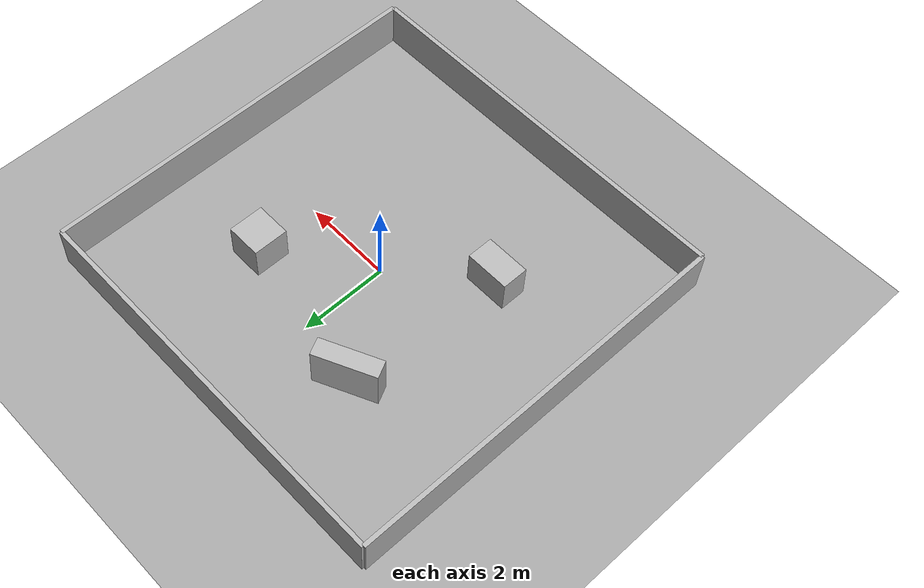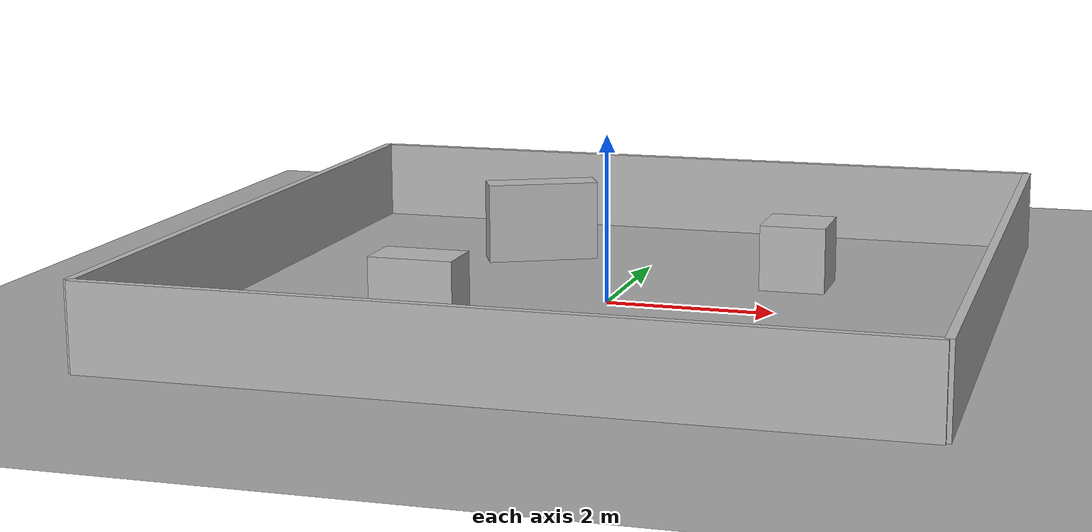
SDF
<?xml version="1.0"?>
<sdf version="1.9">

  <world name="motionlab_world">

    <physics name="physics" type="ignored">
      <max_step_size>0.01</max_step_size>
      <real_time_factor>1.0</real_time_factor>
    </physics>

    <plugin
      filename="gz-sim-physics-system"
      name="gz::sim::systems::Physics"/>

    <plugin
      filename="gz-sim-user-commands-system"
      name="gz::sim::systems::UserCommands"/>

    <plugin
      filename="gz-sim-scene-broadcaster-system"
      name="gz::sim::systems::SceneBroadcaster"/>

    <plugin
      filename="gz-sim-sensors-system"
      name="gz::sim::systems::Sensors">
      <render_engine>ogre2</render_engine>
    </plugin>

    <scene>
      <ambient>0.8 0.8 0.8 1</ambient>
      <background>0.15 0.15 0.18 1</background>
      <shadows>true</shadows>
    </scene>

    <light type="directional" name="sun">
      <cast_shadows>true</cast_shadows>
      <pose>0 0 10 0 0 0</pose>

      <diffuse>0.9 0.9 0.9 1</diffuse>
      <specular>0.2 0.2 0.2 1</specular>

      <attenuation>
        <range>1000</range>
        <constant>0.9</constant>
        <linear>0.01</linear>
        <quadratic>0.001</quadratic>
      </attenuation>

      <direction>-0.5 0.2 -0.9</direction>
    </light>

    <model name="ground_plane">
      <static>true</static>

      <link name="link">
        <collision name="collision">
          <geometry>
            <plane>
              <normal>0 0 1</normal>
              <size>30 30</size>
            </plane>
          </geometry>
        </collision>

        <visual name="visual">
          <geometry>
            <plane>
              <normal>0 0 1</normal>
              <size>30 30</size>
            </plane>
          </geometry>

          <material>
            <ambient>0.65 0.65 0.65 1</ambient>
            <diffuse>0.65 0.65 0.65 1</diffuse>
            <specular>0.05 0.05 0.05 1</specular>
          </material>
        </visual>
      </link>
    </model>

    <!-- MotionLab SLAM test arena     -->

    <!-- Front wall -->
    <model name="wall_front">
      <static>true</static>
      <pose>4.5 0 0.5 0 0 0</pose>
      <link name="link">
        <collision name="collision">
          <geometry>
            <box>
              <size>0.10 9.0 1.0</size>
            </box>
          </geometry>
        </collision>

        <visual name="visual">
          <geometry>
            <box>
              <size>0.10 9.0 1.0</size>
            </box>
          </geometry>
        </visual>
      </link>
    </model>

    <!-- Rear wall -->
    <model name="wall_rear">
      <static>true</static>
      <pose>-4.5 0 0.5 0 0 0</pose>
      <link name="link">
        <collision name="collision">
          <geometry>
            <box>
              <size>0.10 9.0 1.0</size>
            </box>
          </geometry>
        </collision>

        <visual name="visual">
          <geometry>
            <box>
              <size>0.10 9.0 1.0</size>
            </box>
          </geometry>
        </visual>
      </link>
    </model>

    <!-- Left wall -->
    <model name="wall_left">
      <static>true</static>
      <pose>0 4.5 0.5 0 0 0</pose>
      <link name="link">
        <collision name="collision">
          <geometry>
            <box>
              <size>9.0 0.10 1.0</size>
            </box>
          </geometry>
        </collision>

        <visual name="visual">
          <geometry>
            <box>
              <size>9.0 0.10 1.0</size>
            </box>
          </geometry>
        </visual>
      </link>
    </model>

    <!-- Right wall -->
    <model name="wall_right">
      <static>true</static>
      <pose>0 -4.5 0.5 0 0 0</pose>
      <link name="link">
        <collision name="collision">
          <geometry>
            <box>
              <size>9.0 0.10 1.0</size>
            </box>
          </geometry>
        </collision>

        <visual name="visual">
          <geometry>
            <box>
              <size>9.0 0.10 1.0</size>
            </box>
          </geometry>
        </visual>
      </link>
    </model>

    <!-- Obstacle 1 -->
    <model name="obstacle_1">
      <static>true</static>
      <pose>2.0 1.5 0.4 0 0 0</pose>
      <link name="link">
        <collision name="collision">
          <geometry>
            <box>
              <size>0.8 0.8 0.8</size>
            </box>
          </geometry>
        </collision>

        <visual name="visual">
          <geometry>
            <box>
              <size>0.8 0.8 0.8</size>
            </box>
          </geometry>
        </visual>
      </link>
    </model>

    <!-- Obstacle 2 -->
    <model name="obstacle_2">
      <static>true</static>
      <pose>-1.8 -1.5 0.4 0 0 0</pose>
      <link name="link">
        <collision name="collision">
          <geometry>
            <box>
              <size>1.0 0.6 0.8</size>
            </box>
          </geometry>
        </collision>

        <visual name="visual">
          <geometry>
            <box>
              <size>1.0 0.6 0.8</size>
            </box>
          </geometry>
        </visual>
      </link>
    </model>

    <!-- Obstacle 3 -->
    <model name="obstacle_3">
      <static>true</static>
      <pose>-1.5 2.2 0.5 0 0 0.45</pose>
      <link name="link">
        <collision name="collision">
          <geometry>
            <box>
              <size>1.4 0.4 1.0</size>
            </box>
          </geometry>
        </collision>

        <visual name="visual">
          <geometry>
            <box>
              <size>1.4 0.4 1.0</size>
            </box>
          </geometry>
        </visual>
      </link>
    </model>

  </world>

</sdf>
